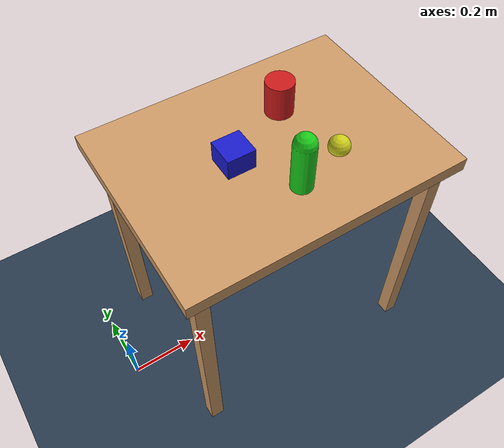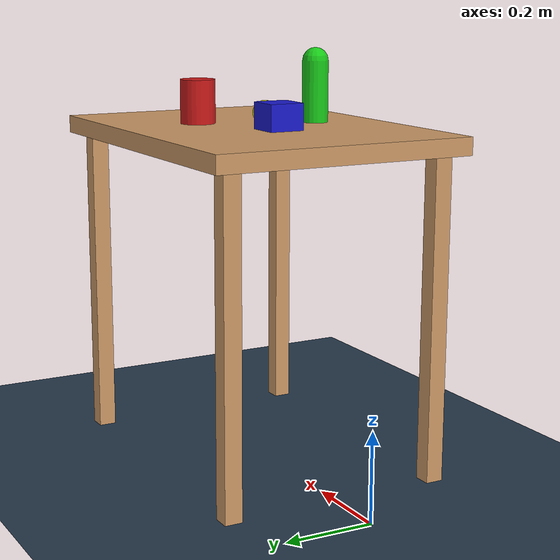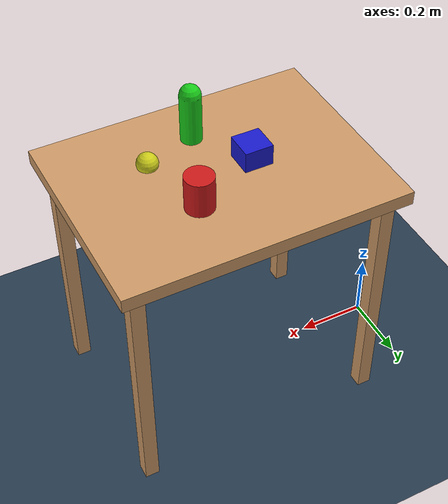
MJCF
<mujoco model="tabletop_scene">
    <compiler angle="radian"/>
    <option timestep="0.005" gravity="0 0 -9.81"/>

    <asset>
        <texture type="skybox" builtin="gradient" rgb1="0.3 0.5 0.7" rgb2="0 0 0" width="512" height="512"/>
        <texture name="texplane" type="2d" builtin="checker" rgb1="0.2 0.3 0.4" rgb2="0.1 0.15 0.2" width="512" height="512" mark="cross" markrgb="0.8 0.8 0.8"/>
        <material name="matplane" reflectance="0.3" texture="texplane" texrepeat="1 1" texuniform="true"/>
        <material name="mattable" rgba="0.8 0.6 0.4 1"/>
        <material name="matred" rgba="0.8 0.1 0.1 1"/>
        <material name="matblue" rgba="0.1 0.1 0.8 1"/>
        <material name="matgreen" rgba="0.1 0.8 0.1 1"/>
        <material name="matyellow" rgba="0.8 0.8 0.1 1"/>
    </asset>

    <worldbody>
        <light directional="true" diffuse="0.8 0.8 0.8" specular="0.2 0.2 0.2" pos="0 0 5" dir="0 0 -1"/>
        <light directional="true" diffuse="0.3 0.3 0.3" pos="2 2 4" dir="-1 -1 -1"/>
        <geom name="floor" type="plane" size="0 0 1" pos="0 0 0" material="matplane"/>

        <!-- Table -->
        <body name="table" pos="0.5 0 0.75">
            <geom name="table_top" type="box" size="0.4 0.3 0.02" material="mattable"/>
            <geom name="table_leg1" type="box" size="0.02 0.02 0.375" pos="0.35 0.25 -0.375" material="mattable"/>
            <geom name="table_leg2" type="box" size="0.02 0.02 0.375" pos="-0.35 0.25 -0.375" material="mattable"/>
            <geom name="table_leg3" type="box" size="0.02 0.02 0.375" pos="0.35 -0.25 -0.375" material="mattable"/>
            <geom name="table_leg4" type="box" size="0.02 0.02 0.375" pos="-0.35 -0.25 -0.375" material="mattable"/>
        </body>

        <!-- Red Cylinder (Mug approximation) -->
        <body name="obj_red_mug" pos="0.6 0.1 0.82">
            <freejoint/>
            <geom name="geom_red_mug" type="cylinder" size="0.04 0.05" material="matred" mass="0.3" friction="0.5 0.005 0.0001"/>
        </body>

        <!-- Blue Box (Block approximation) -->
        <body name="obj_blue_box" pos="0.4 0.0 0.79">
            <freejoint/>
            <geom name="geom_blue_box" type="box" size="0.04 0.04 0.04" material="matblue" mass="0.2" friction="0.4 0.005 0.0001"/>
        </body>

        <!-- Green Capsule (Bottle approximation) -->
        <body name="obj_green_bottle" pos="0.5 -0.15 0.83">
            <freejoint/>
            <geom name="geom_green_bottle" type="capsule" size="0.03 0.08" material="matgreen" mass="0.4" friction="0.3 0.005 0.0001"/>
        </body>

        <!-- Yellow Sphere (Ball approximation) -->
        <body name="obj_yellow_ball" pos="0.65 -0.1 0.78">
            <freejoint/>
            <geom name="geom_yellow_ball" type="sphere" size="0.03" material="matyellow" mass="0.1" friction="0.2 0.005 0.0001"/>
        </body>

        <!-- Cameras for Active Perception testing -->
        <camera name="overview_cam" pos="-0.5 0 1.5" xyaxes="0 -1 0 0.8 0 0.6" fovy="45"/>
        <camera name="wrist_cam_proxy" pos="0.3 0 1.2" xyaxes="0 -1 0 0.5 0 0.866" fovy="60"/>
    </worldbody>
</mujoco>
